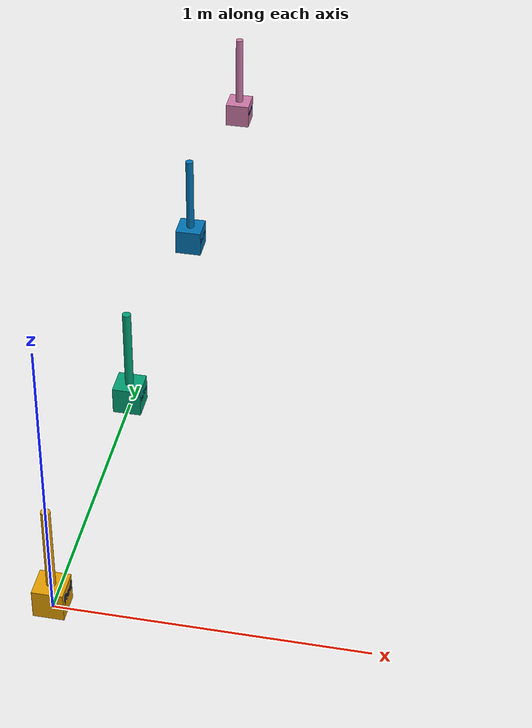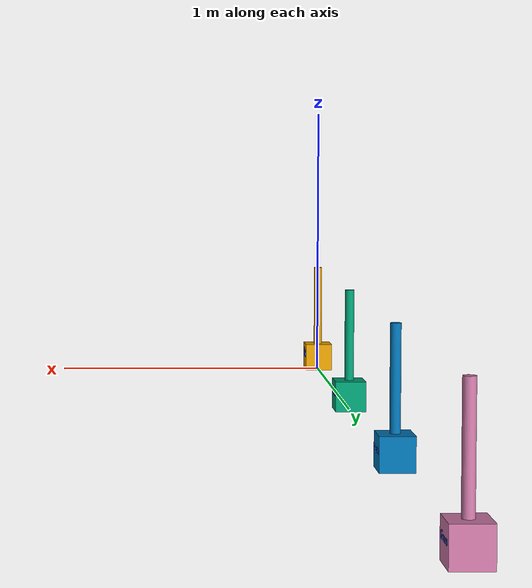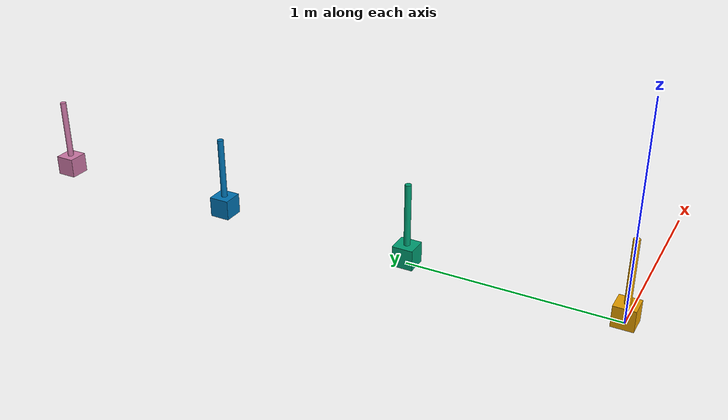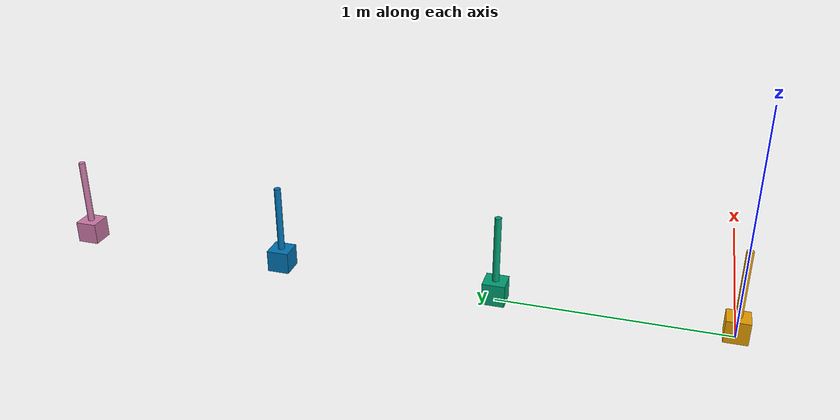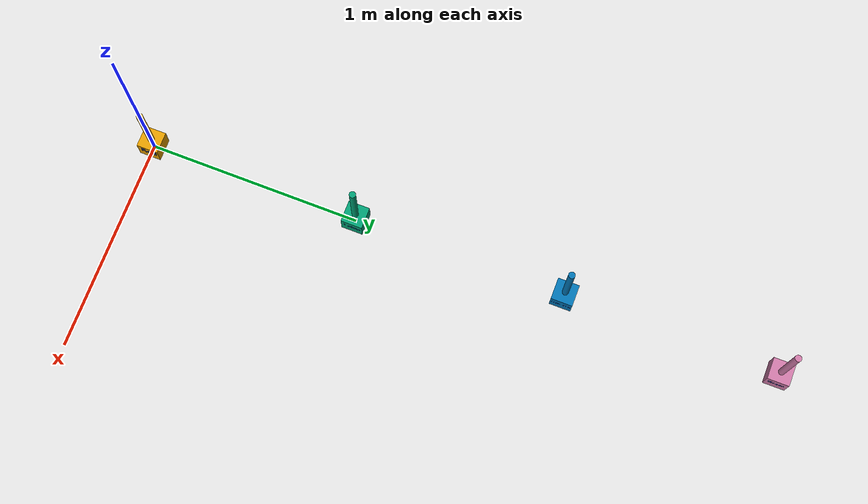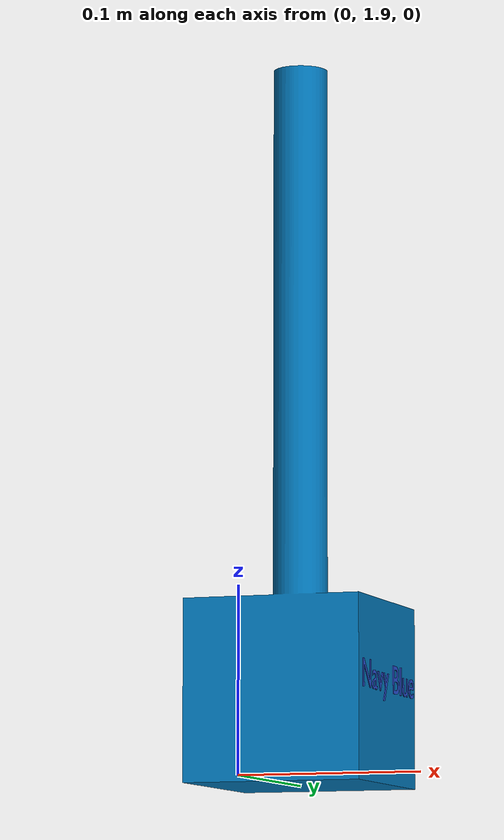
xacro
<?xml version="1.0"?>

<robot name="stands" xmlns:xacro="http://ros.org/wiki/xacro">

  <!-- body of the bot -->
  <link name="stand1">
    <pose>0 0 0 0 0 0</pose>
    <inertial>
      <mass value="100"/>
      <origin rpy="0 0 0" xyz="0 0 0"/>
      <inertia ixx="0.0395416666667" ixy="0" ixz="0" iyy="0.106208333333" iyz="0" izz="0.106208333333"/>
    </inertial>
    <collision name="collision_chassis">
      <origin rpy="0 0 0" xyz="0 0 0.1"/>
      <geometry>
        <mesh filename="package://hexbot/shapes/base.stl" scale="1 1 1"/>
      </geometry>
    </collision>
    <visual>
      <origin rpy="0 0 0" xyz="0 0 0"/>
      <geometry>
        <mesh filename="package://hexbot/shapes/base.stl" scale="1 1 1"/>
      </geometry>

    </visual>
  </link>

  <link name="red_name">
    <pose>0 0 0 0 0 0</pose>
    <inertial>
      <mass value="0.2"/>
      <origin rpy="0 0 0" xyz="0 0 0"/>
      <inertia ixx="0.0395416666667" ixy="0" ixz="0" iyy="0.106208333333" iyz="0" izz="0.106208333333"/>
    </inertial>
    <collision name="collision_chassis">
      <origin rpy="0 0 0" xyz="0 0 0"/>
      <geometry>
        <mesh filename="package://hexbot/shapes/red.stl" scale="1 1 1"/>
      </geometry>
    </collision>
    <visual>
      <origin rpy="0 0 0" xyz="0 0 0"/>
      <geometry>
        <mesh filename="package://hexbot/shapes/red.stl" scale="1 1 1"/>
      </geometry>
      <material name="blue"/>
    </visual>
  </link>

    <joint name="stand1joint" type="fixed">
    <origin xyz="0.05 -0.035 0.05" rpy="1.5707 0 1.5707" />
    <parent link="stand1"/>
    <child link="red_name" />
  </joint>

    <!-- body of the bot -->
  <link name="stand2">
    <pose>0 0 0 0 0 0</pose>
    <inertial>
      <mass value="100"/>
      <origin rpy="0 0 0" xyz="0 0 0"/>
      <inertia ixx="0.0395416666667" ixy="0" ixz="0" iyy="0.106208333333" iyz="0" izz="0.106208333333"/>
    </inertial>
    <collision name="collision_chassis">
      <origin rpy="0 0 0" xyz="0 0 0.1"/>
      <geometry>
        <mesh filename="package://hexbot/shapes/base.stl" scale="1 1 1"/>
      </geometry>
    </collision>
    <visual>
      <origin rpy="0 0 0" xyz="0 0 0"/>
      <geometry>
        <mesh filename="package://hexbot/shapes/base.stl" scale="1 1 1"/>
      </geometry>

    </visual>
  </link>

      <joint name="stand1tostand2" type="fixed">
    <origin xyz="0 1 0" rpy="0 0 0" />
    <parent link="stand1"/>
    <child link="stand2" />
  </joint>

  <link name="red_name_2">
    <pose>0 0 0 0 0 0</pose>
    <inertial>
      <mass value="100"/>
      <origin rpy="0 0 0" xyz="0 0 0"/>
      <inertia ixx="0.0395416666667" ixy="0" ixz="0" iyy="0.106208333333" iyz="0" izz="0.106208333333"/>
    </inertial>
    <collision name="collision_chassis">
      <origin rpy="0 0 0" xyz="0 0 0"/>
      <geometry>
        <mesh filename="package://hexbot/shapes/yellow.stl" scale="1 1 1"/>
      </geometry>
    </collision>
    <visual>
      <origin rpy="0 0 0" xyz="0 0 0"/>
      <geometry>
        <mesh filename="package://hexbot/shapes/yellow.stl" scale="0.6  0.6 0.6"/>
      </geometry>
      <material name="blue"/>
    </visual>
  </link>

    <joint name="stand2joint" type="fixed">
    <origin xyz="0.05 -0.04 0.05" rpy="1.5707 0 1.5707" />
    <parent link="stand2"/>
    <child link="red_name_2" />
  </joint>

      <!-- body of the bot -->
  <link name="stand3">
    <pose>0 0 0 0 0 0</pose>
    <inertial>
      <mass value="100"/>
      <origin rpy="0 0 0" xyz="0 0 0"/>
      <inertia ixx="0.0395416666667" ixy="0" ixz="0" iyy="0.106208333333" iyz="0" izz="0.106208333333"/>
    </inertial>
    <collision name="collision_chassis">
      <origin rpy="0 0 0" xyz="0 0 0.1"/>
      <geometry>
        <mesh filename="package://hexbot/shapes/base.stl" scale="1 1 1"/>
      </geometry>
    </collision>
    <visual>
      <origin rpy="0 0 0" xyz="0 0 0"/>
      <geometry>
        <mesh filename="package://hexbot/shapes/base.stl" scale="1 1 1"/>
      </geometry>

    </visual>
  </link>

      <joint name="stand2tostand3" type="fixed">
    <origin xyz="0 1 0" rpy="0 0 0" />
    <parent link="stand2"/>
    <child link="stand3" />
  </joint>

  <link name="red_name_3">
    <pose>0 0 0 0 0 0</pose>
    <inertial>
      <mass value="100"/>
      <origin rpy="0 0 0" xyz="0 0 0"/>
      <inertia ixx="0.0395416666667" ixy="0" ixz="0" iyy="0.106208333333" iyz="0" izz="0.106208333333"/>
    </inertial>
    <collision name="collision_chassis">
      <origin rpy="0 0 0" xyz="0 0 0"/>
      <geometry>
        <mesh filename="package://hexbot/shapes/navy blue.stl" scale="1 1 1"/>
      </geometry>
    </collision>
    <visual>
      <origin rpy="0 0 0" xyz="0 0 0"/>
      <geometry>
        <mesh filename="package://hexbot/shapes/navy blue.stl" scale="0.45 0.45 0.45"/>
      </geometry>
      <material name="blue"/>
    </visual>
  </link>

    <joint name="stand3joint" type="fixed">
    <origin xyz="0.05 -0.045 0.05" rpy="1.5707 0 1.5707" />
    <parent link="stand3"/>
    <child link="red_name_3" />
  </joint>

        <!-- body of the bot -->
  <link name="stand4">
    <pose>0 0 0 0 0 0</pose>
    <inertial>
      <mass value="100"/>
      <origin rpy="0 0 0" xyz="0 0 0"/>
      <inertia ixx="0.0395416666667" ixy="0" ixz="0" iyy="0.106208333333" iyz="0" izz="0.106208333333"/>
    </inertial>
    <collision name="collision_chassis">
      <origin rpy="0 0 0" xyz="0 0 0.1"/>
      <geometry>
        <mesh filename="package://hexbot/shapes/base.stl" scale="1 1 1"/>
      </geometry>
    </collision>
    <visual>
      <origin rpy="0 0 0" xyz="0 0 0"/>
      <geometry>
        <mesh filename="package://hexbot/shapes/base.stl" scale="1 1 1"/>
      </geometry>

    </visual>
  </link>

      <joint name="stand3tostand4" type="fixed">
    <origin xyz="0 1 0" rpy="0 0 0" />
    <parent link="stand3"/>
    <child link="stand4" />
  </joint>

  <link name="red_name_4">
    <pose>0 0 0 0 0 0</pose>
    <inertial>
      <mass value="100"/>
      <origin rpy="0 0 0" xyz="0 0 0"/>
      <inertia ixx="0.0395416666667" ixy="0" ixz="0" iyy="0.106208333333" iyz="0" izz="0.106208333333"/>
    </inertial>
    <collision name="collision_chassis">
      <origin rpy="0 0 0" xyz="0 0 0"/>
      <geometry>
        <mesh filename="package://hexbot/shapes/green.stl" scale="1 1 1"/>
      </geometry>
    </collision>
    <visual>
      <origin rpy="0 0 0" xyz="0 0 0"/>
      <geometry>
        <mesh filename="package://hexbot/shapes/green.stl" scale="0.6 0.6 0.6"/>
      </geometry>
      <material name="blue"/>
    </visual>
  </link>

    <joint name="stand4joint" type="fixed">
    <origin xyz="0.05 -0.04 0.05" rpy="1.5707 0 1.5707" />
    <parent link="stand4"/>
    <child link="red_name_4" />
  </joint>

    <gazebo reference="red_name">
    <material>Gazebo/Black</material>
  </gazebo>
  <gazebo reference="red_name_2">
    <material>Gazebo/Black</material>
  </gazebo>
  <gazebo reference="red_name_3">
    <material>Gazebo/Black</material>
  </gazebo>
    <gazebo reference="red_name_4">
    <material>Gazebo/Black</material>
  </gazebo>
  <gazebo reference="stand1">
   <turnGravityOff>true</turnGravityOff>
   <material>
          <lighting>1</lighting>
          <ambient>0.4 0.2 0 1</ambient>
            <diffuse>0.4 0.2 0 1</diffuse>
            <specular>0.4 0.2 0 1</specular>
            <emissive>0.4 0.2 0 1</emissive>
        </material>
</gazebo>
<gazebo reference="stand2">
   <turnGravityOff>true</turnGravityOff>
   <material>
          <lighting>1</lighting>
          <ambient>0.4 0.2 0 1</ambient>
            <diffuse>0.4 0.2 0 1</diffuse>
            <specular>0.4 0.2 0 1</specular>
            <emissive>0.4 0.2 0 1</emissive>
        </material>
</gazebo>
<gazebo reference="stand3">
   <turnGravityOff>true</turnGravityOff>
   <material>
          <lighting>1</lighting>
          <ambient>0.4 0.2 0 1</ambient>
            <diffuse>0.4 0.2 0 1</diffuse>
            <specular>0.4 0.2 0 1</specular>
            <emissive>0.4 0.2 0 1</emissive>
        </material>
</gazebo>
<gazebo reference="stand4">
   <turnGravityOff>true</turnGravityOff>
   <material>
          <lighting>1</lighting>
          <ambient>0.4 0.2 0 1</ambient>
            <diffuse>0.4 0.2 0 1</diffuse>
            <specular>0.4 0.2 0 1</specular>
            <emissive>0.4 0.2 0 1</emissive>
        </material>
</gazebo>
<gazebo reference="red_name_4">
   <turnGravityOff>true</turnGravityOff>
</gazebo>
<gazebo reference="red_name_2">
   <turnGravityOff>true</turnGravityOff>
</gazebo>
<gazebo reference="red_name_3">
   <turnGravityOff>true</turnGravityOff>
</gazebo>
<gazebo reference="red_name_4">
   <turnGravityOff>true</turnGravityOff>
</gazebo>
  <gazebo>
    <static>true</static>
</gazebo>
</robot>
